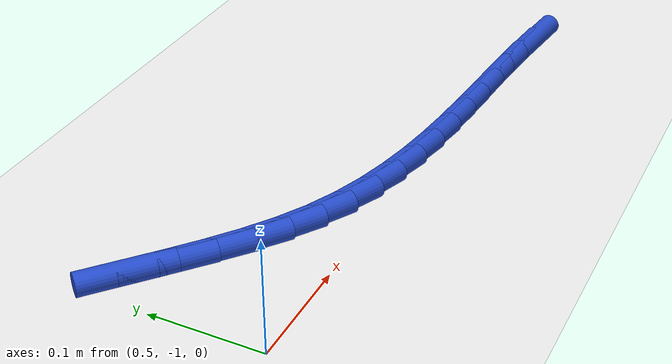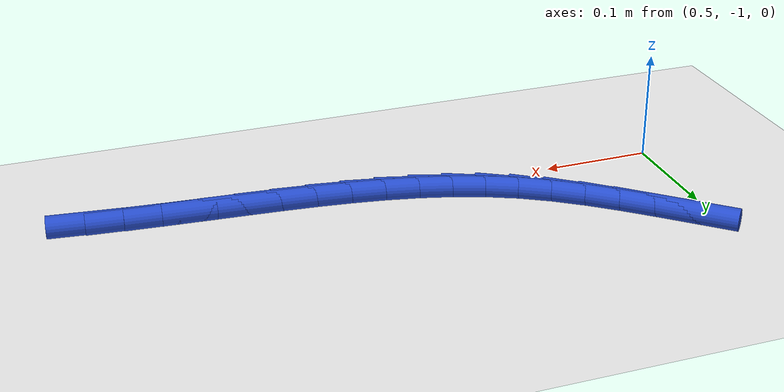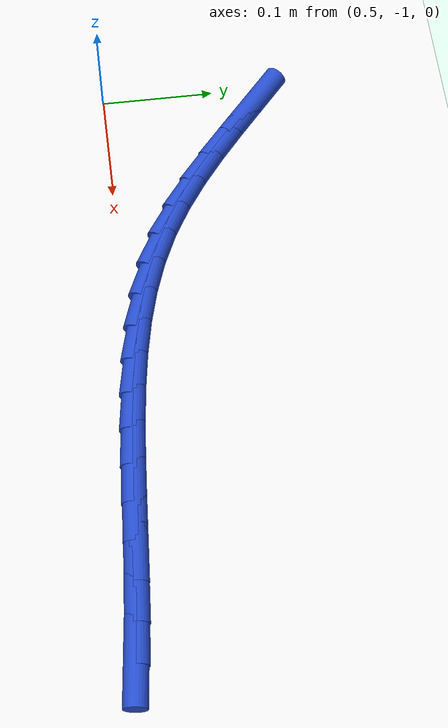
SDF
<sdf version="1.6">
 <world name="default">
  <model name="ground_plane">
   <static>1</static>
   <link name="link">
    <collision name="collision">
     <geometry><plane><normal>0 0 1</normal><size>100 100</size></plane></geometry>
     <surface><friction><ode><mu>100</mu><mu2>50</mu2></ode></friction></surface>
    </collision>
    <visual name="visual">
     <cast_shadows>0</cast_shadows>
     <geometry><plane><normal>0 0 1</normal><size>100 100</size></plane></geometry>
     <material>
      <script><uri>file://media/materials/scripts/gazebo.material</uri><name>Gazebo/WhiteGlow</name></script>
     </material>
    </visual>
   </link>
  </model>
  <model name="line">
   <link name="link_159">
    <pose>1.0172961737126347 -1.0188319752066721 0.01 0 1.57 -0.11164469551864344</pose>
    <collision name="collision">
     <geometry><cylinder><radius>0.01</radius><length>0.08</length></cylinder></geometry>
    </collision>
    <visual name="visual">
     <material>
      <script><name>Gazebo/Blue</name><uri>file://media/materials/scripts/gazebo.material</uri></script>
     </material>
     <geometry><cylinder><radius>0.01</radius><length>0.08</length></cylinder></geometry>
    </visual>
   </link>
   <link name="link_160">
    <pose>0.9851288558857583 -1.015225668688232 0.01 0 1.57 -0.08657231737567819</pose>
    <collision name="collision">
     <geometry><cylinder><radius>0.01</radius><length>0.08</length></cylinder></geometry>
    </collision>
    <visual name="visual">
     <material>
      <script><name>Gazebo/Blue</name><uri>file://media/materials/scripts/gazebo.material</uri></script>
     </material>
     <geometry><cylinder><radius>0.01</radius><length>0.08</length></cylinder></geometry>
    </visual>
   </link>
   <link name="link_161">
    <pose>0.9528426901874256 -1.0124235766628518 0.01 0 1.57 -0.071680729476416</pose>
    <collision name="collision">
     <geometry><cylinder><radius>0.01</radius><length>0.08</length></cylinder></geometry>
    </collision>
    <visual name="visual">
     <material>
      <script><name>Gazebo/Blue</name><uri>file://media/materials/scripts/gazebo.material</uri></script>
     </material>
     <geometry><cylinder><radius>0.01</radius><length>0.08</length></cylinder></geometry>
    </visual>
   </link>
   <link name="link_162">
    <pose>0.9205520705311151 -1.0101049890638887 0.01 0 1.57 -0.06689134941489856</pose>
    <collision name="collision">
     <geometry><cylinder><radius>0.01</radius><length>0.08</length></cylinder></geometry>
    </collision>
    <visual name="visual">
     <material>
      <script><name>Gazebo/Blue</name><uri>file://media/materials/scripts/gazebo.material</uri></script>
     </material>
     <geometry><cylinder><radius>0.01</radius><length>0.08</length></cylinder></geometry>
    </visual>
   </link>
   <link name="link_163">
    <pose>0.888371395488344 -1.0079491639465294 0.01 0 1.57 -0.07227906752435487</pose>
    <collision name="collision">
     <geometry><cylinder><radius>0.01</radius><length>0.08</length></cylinder></geometry>
    </collision>
    <visual name="visual">
     <material>
      <script><name>Gazebo/Blue</name><uri>file://media/materials/scripts/gazebo.material</uri></script>
     </material>
     <geometry><cylinder><radius>0.01</radius><length>0.08</length></cylinder></geometry>
    </visual>
   </link>
   <link name="link_164">
    <pose>0.8564150636306289 -1.0056353593659608 0.01 0 1.57 -0.08809332091743811</pose>
    <collision name="collision">
     <geometry><cylinder><radius>0.01</radius><length>0.08</length></cylinder></geometry>
    </collision>
    <visual name="visual">
     <material>
      <script><name>Gazebo/Blue</name><uri>file://media/materials/scripts/gazebo.material</uri></script>
     </material>
     <geometry><cylinder><radius>0.01</radius><length>0.08</length></cylinder></geometry>
    </visual>
   </link>
   <link name="link_165">
    <pose>0.8247974735294896 -1.00284283337737 0.01 0 1.57 -0.11475282947655512</pose>
    <collision name="collision">
     <geometry><cylinder><radius>0.01</radius><length>0.08</length></cylinder></geometry>
    </collision>
    <visual name="visual">
     <material>
      <script><name>Gazebo/Blue</name><uri>file://media/materials/scripts/gazebo.material</uri></script>
     </material>
     <geometry><cylinder><radius>0.01</radius><length>0.08</length></cylinder></geometry>
    </visual>
   </link>
   <link name="link_166">
    <pose>0.793633023756443 -0.9992508440359442 0.01 0 1.57 -0.152808245552867</pose>
    <collision name="collision">
     <geometry><cylinder><radius>0.01</radius><length>0.08</length></cylinder></geometry>
    </collision>
    <visual name="visual">
     <material>
      <script><name>Gazebo/Blue</name><uri>file://media/materials/scripts/gazebo.material</uri></script>
     </material>
     <geometry><cylinder><radius>0.01</radius><length>0.08</length></cylinder></geometry>
    </visual>
   </link>
   <link name="link_167">
    <pose>0.7630361128830061 -0.9945386493968695 0.01 0 1.57 -0.20285846628823637</pose>
    <collision name="collision">
     <geometry><cylinder><radius>0.01</radius><length>0.08</length></cylinder></geometry>
    </collision>
    <visual name="visual">
     <material>
      <script><name>Gazebo/Blue</name><uri>file://media/materials/scripts/gazebo.material</uri></script>
     </material>
     <geometry><cylinder><radius>0.01</radius><length>0.08</length></cylinder></geometry>
    </visual>
   </link>
   <link name="link_168">
    <pose>0.7331211394806975 -0.9883855075153343 0.01 0 1.57 -0.26540109529728173</pose>
    <collision name="collision">
     <geometry><cylinder><radius>0.01</radius><length>0.08</length></cylinder></geometry>
    </collision>
    <visual name="visual">
     <material>
      <script><name>Gazebo/Blue</name><uri>file://media/materials/scripts/gazebo.material</uri></script>
     </material>
     <geometry><cylinder><radius>0.01</radius><length>0.08</length></cylinder></geometry>
    </visual>
   </link>
   <link name="link_169">
    <pose>0.7040025021210339 -0.9804706764465241 0.01 0 1.57 -0.34060126522020506</pose>
    <collision name="collision">
     <geometry><cylinder><radius>0.01</radius><length>0.08</length></cylinder></geometry>
    </collision>
    <visual name="visual">
     <material>
      <script><name>Gazebo/Blue</name><uri>file://media/materials/scripts/gazebo.material</uri></script>
     </material>
     <geometry><cylinder><radius>0.01</radius><length>0.08</length></cylinder></geometry>
    </visual>
   </link>
   <link name="link_170">
    <pose>0.6757945993755331 -0.9704734142456265 0.01 0 1.57 -0.4279873899768664</pose>
    <collision name="collision">
     <geometry><cylinder><radius>0.01</radius><length>0.08</length></cylinder></geometry>
    </collision>
    <visual name="visual">
     <material>
      <script><name>Gazebo/Blue</name><uri>file://media/materials/scripts/gazebo.material</uri></script>
     </material>
     <geometry><cylinder><radius>0.01</radius><length>0.08</length></cylinder></geometry>
    </visual>
   </link>
   <link name="link_171">
    <pose>0.6486118298157141 -0.9580729789678286 0.01 0 1.57 -0.5215354866595904</pose>
    <collision name="collision">
     <geometry><cylinder><radius>0.01</radius><length>0.08</length></cylinder></geometry>
    </collision>
    <visual name="visual">
     <material>
      <script><name>Gazebo/Blue</name><uri>file://media/materials/scripts/gazebo.material</uri></script>
     </material>
     <geometry><cylinder><radius>0.01</radius><length>0.08</length></cylinder></geometry>
    </visual>
   </link>
   <link name="link_172">
    <pose>0.6225135026474685 -0.943076815279765 0.01 0 1.57 -0.5997895684965993</pose>
    <collision name="collision">
     <geometry><cylinder><radius>0.01</radius><length>0.08</length></cylinder></geometry>
    </collision>
    <visual name="visual">
     <material>
      <script><name>Gazebo/Blue</name><uri>file://media/materials/scripts/gazebo.material</uri></script>
     </material>
     <geometry><cylinder><radius>0.01</radius><length>0.08</length></cylinder></geometry>
    </visual>
   </link>
   <link name="link_173">
    <pose>0.5973198436051949 -0.9258486875608938 0.01 0 1.57 -0.657573481290072</pose>
    <collision name="collision">
     <geometry><cylinder><radius>0.01</radius><length>0.08</length></cylinder></geometry>
    </collision>
    <visual name="visual">
     <material>
      <script><name>Gazebo/Blue</name><uri>file://media/materials/scripts/gazebo.material</uri></script>
     </material>
     <geometry><cylinder><radius>0.01</radius><length>0.08</length></cylinder></geometry>
    </visual>
   </link>
   <link name="link_174">
    <pose>0.5727862349497947 -0.9069032434881621 0.01 0 1.57 -0.6959514520484095</pose>
    <collision name="collision">
     <geometry><cylinder><radius>0.01</radius><length>0.08</length></cylinder></geometry>
    </collision>
    <visual name="visual">
     <material>
      <script><name>Gazebo/Blue</name><uri>file://media/materials/scripts/gazebo.material</uri></script>
     </material>
     <geometry><cylinder><radius>0.01</radius><length>0.08</length></cylinder></geometry>
    </visual>
   </link>
   <link name="link_175">
    <pose>0.5486680577412866 -0.8867551335328347 0.01 0 1.57 -0.7160367017167835</pose>
    <collision name="collision">
     <geometry><cylinder><radius>0.01</radius><length>0.08</length></cylinder></geometry>
    </collision>
    <visual name="visual">
     <material>
      <script><name>Gazebo/Blue</name><uri>file://media/materials/scripts/gazebo.material</uri></script>
     </material>
     <geometry><cylinder><radius>0.01</radius><length>0.08</length></cylinder></geometry>
    </visual>
   </link>
   <link name="link_176">
    <pose>0.5247206930396874 -0.8659190081661757 0.01 0 1.57 -0.718616945788437</pose>
    <collision name="collision">
     <geometry><cylinder><radius>0.01</radius><length>0.08</length></cylinder></geometry>
    </collision>
    <visual name="visual">
     <material>
      <script><name>Gazebo/Blue</name><uri>file://media/materials/scripts/gazebo.material</uri></script>
     </material>
     <geometry><cylinder><radius>0.01</radius><length>0.08</length></cylinder></geometry>
    </visual>
   </link>
  </model>
 </world>
</sdf>
